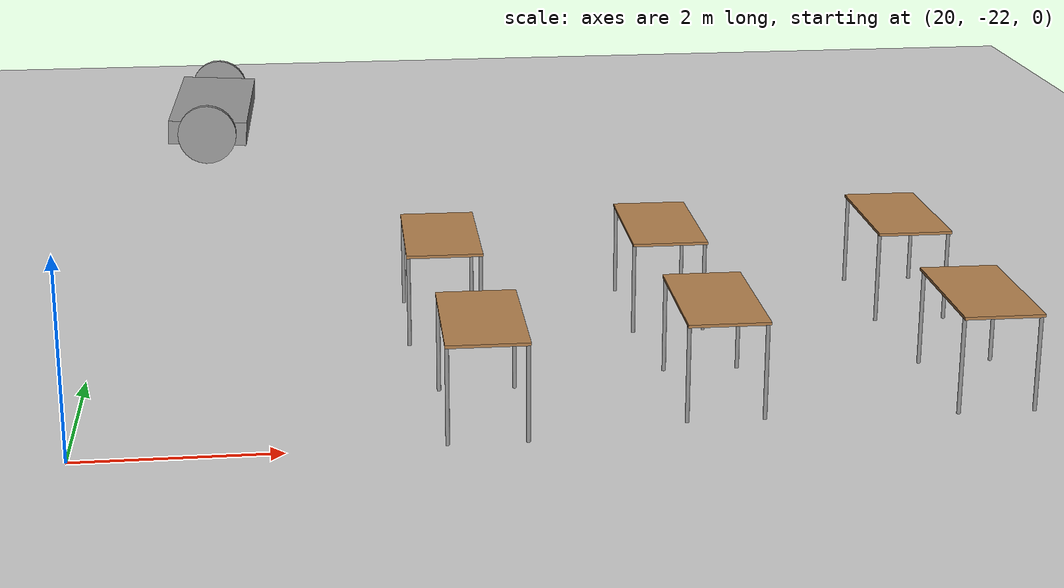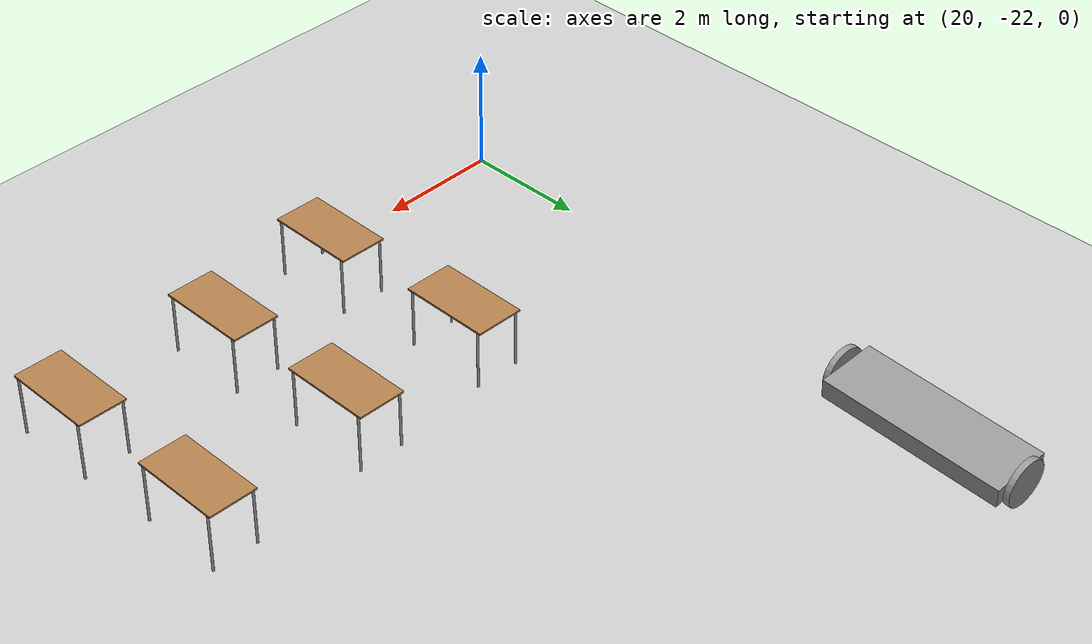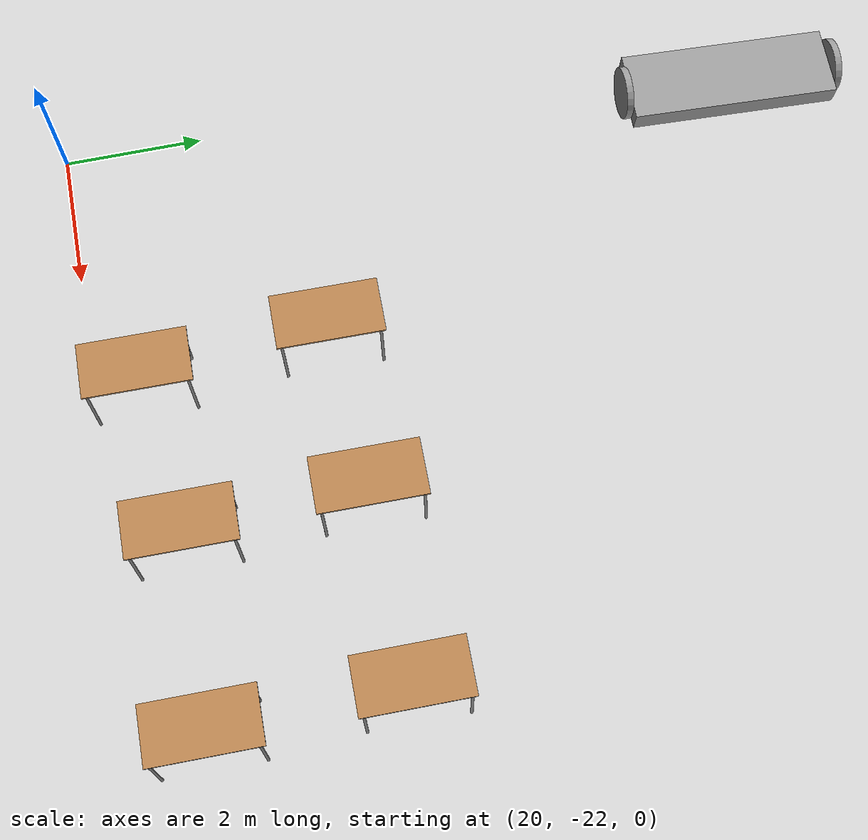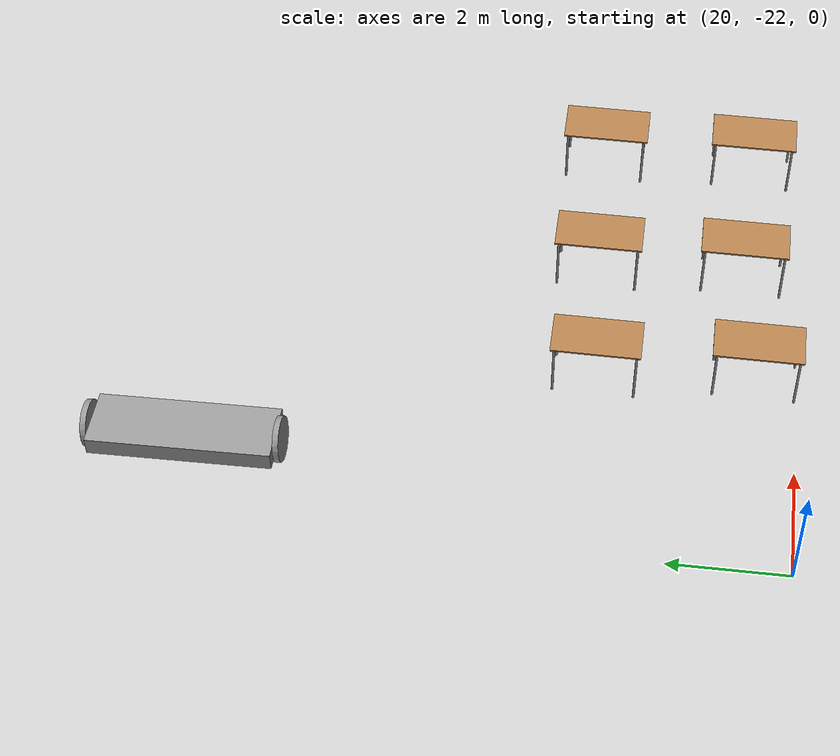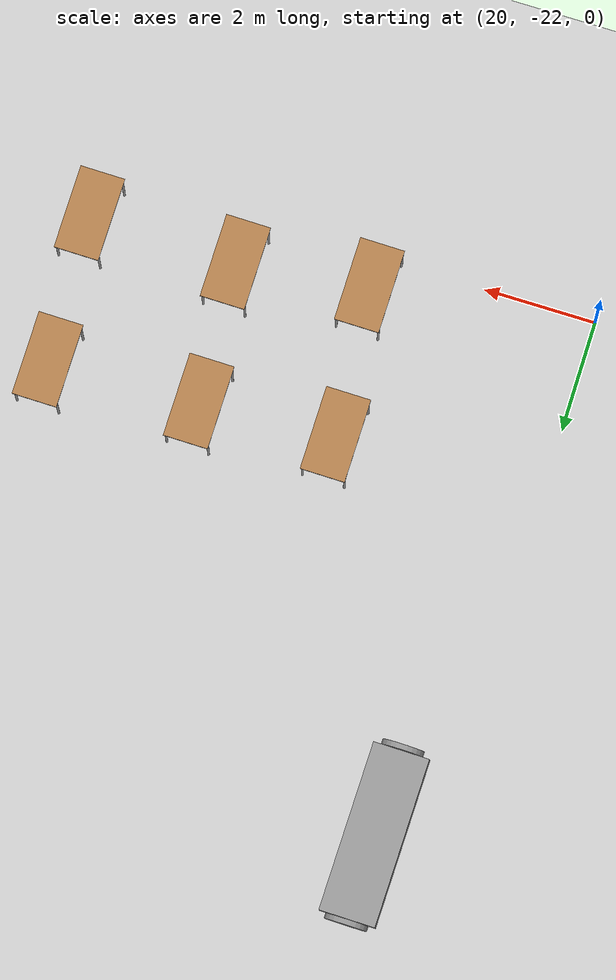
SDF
<sdf version="1.6">
 <world name="default">
  <model name="ground_plane">
   <static>1</static>
   <link name="link">
    <collision name="collision">
     <geometry><plane><normal>0 0 1</normal><size>100 100</size></plane></geometry>
     <surface>
      <contact><collide_bitmask>65535</collide_bitmask></contact>
      <friction><ode><mu>100</mu><mu2>50</mu2></ode></friction>
     </surface>
    </collision>
    <visual name="visual">
     <cast_shadows>0</cast_shadows>
     <geometry><plane><normal>0 0 1</normal><size>100 100</size></plane></geometry>
     <material>
      <script><uri>file://media/materials/scripts/gazebo.material</uri><name>Gazebo/Grey</name></script>
     </material>
    </visual>
   </link>
  </model>
  <model name="robot">
   <link name="link_0">
    <pose>3e-06 -0 0.000329 0 -0 0</pose>
    <inertial>
     <mass>1</mass>
     <inertia>
      <ixx>0.166667</ixx>
      <ixy>0</ixy>
      <ixz>0</ixz>
      <iyy>0.166667</iyy>
      <iyz>0</iyz>
      <izz>0.166667</izz>
     </inertia>
    </inertial>
    <visual name="visual">
     <geometry><box><size>3 1 0.3</size></box></geometry>
     <material>
      <lighting>1</lighting>
      <script><uri>file://media/materials/scripts/gazebo.material</uri><name>Gazebo/Grey</name></script>
      <shader type="pixel"><normal_map>__default__</normal_map></shader>
      <ambient>0.46 0.46 0.46 1</ambient>
      <diffuse>0.5 0.5 0.5 1</diffuse>
      <specular>0.46 0.46 0.46 1</specular>
      <emissive>0.46 0.46 0.46 1</emissive>
     </material>
    </visual>
    <collision name="collision">
     <geometry><box><size>3 1 0.3</size></box></geometry>
     <surface>
      <friction>
       <ode><mu>1</mu><mu2>1</mu2><fdir1>0 0 0</fdir1><slip1>0</slip1><slip2>0</slip2></ode>
       <torsional>
        <coefficient>1</coefficient>
        <patch_radius>0</patch_radius>
        <surface_radius>0</surface_radius>
        <use_patch_radius>1</use_patch_radius>
        <ode><slip>0</slip></ode>
       </torsional>
      </friction>
      <bounce><restitution_coefficient>0</restitution_coefficient><threshold>1e+06</threshold></bounce>
      <contact>
       <collide_without_contact>0</collide_without_contact>
       <collide_without_contact_bitmask>1</collide_without_contact_bitmask>
       <collide_bitmask>1</collide_bitmask>
       <ode>
        <soft_cfm>0</soft_cfm>
        <soft_erp>0.2</soft_erp>
        <kp>1e+13</kp>
        <kd>1</kd>
        <max_vel>0.01</max_vel>
        <min_depth>0</min_depth>
       </ode>
       <bullet>
        <split_impulse>1</split_impulse>
        <split_impulse_penetration_threshold>-0.01</split_impulse_penetration_threshold>
        <soft_cfm>0</soft_cfm>
        <soft_erp>0.2</soft_erp>
        <kp>1e+13</kp>
        <kd>1</kd>
       </bullet>
      </contact>
     </surface>
    </collision>
   </link>
   <link name="link_2">
    <pose>-1.55429 0 -0.000659 0 -1.54935 0</pose>
    <inertial>
     <mass>0.0533854</mass>
     <inertia>
      <ixx>0.00190297</ixx>
      <ixy>0</ixy>
      <ixz>0</ixz>
      <iyy>0.00190297</iyy>
      <iyz>0</iyz>
      <izz>0.0037245</izz>
     </inertia>
    </inertial>
    <visual name="visual">
     <geometry><cylinder><radius>0.373541</radius><length>0.0956725</length></cylinder></geometry>
     <material>
      <lighting>1</lighting>
      <script><uri>file://media/materials/scripts/gazebo.material</uri><name>Gazebo/Grey</name></script>
      <shader type="pixel"/>
      <ambient>0.3 0.3 0.3 1</ambient>
      <diffuse>0.7 0.7 0.7 1</diffuse>
      <specular>0.01 0.01 0.01 1</specular>
      <emissive>0 0 0 1</emissive>
     </material>
    </visual>
    <collision name="collision">
     <geometry><cylinder><radius>0.373541</radius><length>0.095673</length></cylinder></geometry>
     <surface>
      <friction>
       <ode><mu>1</mu><mu2>1</mu2><fdir1>0 0 0</fdir1><slip1>0</slip1><slip2>0</slip2></ode>
       <torsional>
        <coefficient>1</coefficient>
        <patch_radius>0</patch_radius>
        <surface_radius>0</surface_radius>
        <use_patch_radius>1</use_patch_radius>
        <ode><slip>0</slip></ode>
       </torsional>
      </friction>
      <bounce><restitution_coefficient>0</restitution_coefficient><threshold>1e+06</threshold></bounce>
      <contact>
       <collide_without_contact>0</collide_without_contact>
       <collide_without_contact_bitmask>1</collide_without_contact_bitmask>
       <collide_bitmask>1</collide_bitmask>
       <ode>
        <soft_cfm>0</soft_cfm>
        <soft_erp>0.2</soft_erp>
        <kp>1e+13</kp>
        <kd>1</kd>
        <max_vel>0.01</max_vel>
        <min_depth>0</min_depth>
       </ode>
       <bullet>
        <split_impulse>1</split_impulse>
        <split_impulse_penetration_threshold>-0.01</split_impulse_penetration_threshold>
        <soft_cfm>0</soft_cfm>
        <soft_erp>0.2</soft_erp>
        <kp>1e+13</kp>
        <kd>1</kd>
       </bullet>
      </contact>
     </surface>
    </collision>
   </link>
   <link name="link_2_clone">
    <pose>1.55429 -0 0.000329 0 -1.54935 0</pose>
    <inertial>
     <mass>0.055591</mass>
     <inertia>
      <ixx>0.00206137</ixx>
      <ixy>0</ixy>
      <ixz>0</ixz>
      <iyy>0.00206137</iyy>
      <iyz>0</iyz>
      <izz>0.00403793</izz>
     </inertia>
    </inertial>
    <visual name="visual">
     <geometry><cylinder><radius>0.381147</radius><length>0.0956725</length></cylinder></geometry>
     <material>
      <lighting>1</lighting>
      <script><uri>file://media/materials/scripts/gazebo.material</uri><name>Gazebo/Grey</name></script>
      <shader type="pixel"/>
      <ambient>0.3 0.3 0.3 1</ambient>
      <diffuse>0.7 0.7 0.7 1</diffuse>
      <specular>0.01 0.01 0.01 1</specular>
      <emissive>0 0 0 1</emissive>
     </material>
    </visual>
    <collision name="collision">
     <geometry><cylinder><radius>0.381147</radius><length>0.095673</length></cylinder></geometry>
     <surface>
      <friction>
       <ode><mu>1</mu><mu2>1</mu2><fdir1>0 0 0</fdir1><slip1>0</slip1><slip2>0</slip2></ode>
       <torsional>
        <coefficient>1</coefficient>
        <patch_radius>0</patch_radius>
        <surface_radius>0</surface_radius>
        <use_patch_radius>1</use_patch_radius>
        <ode><slip>0</slip></ode>
       </torsional>
      </friction>
      <bounce><restitution_coefficient>0</restitution_coefficient><threshold>1e+06</threshold></bounce>
      <contact>
       <collide_without_contact>0</collide_without_contact>
       <collide_without_contact_bitmask>1</collide_without_contact_bitmask>
       <collide_bitmask>1</collide_bitmask>
       <ode>
        <soft_cfm>0</soft_cfm>
        <soft_erp>0.2</soft_erp>
        <kp>1e+13</kp>
        <kd>1</kd>
        <max_vel>0.01</max_vel>
        <min_depth>0</min_depth>
       </ode>
       <bullet>
        <split_impulse>1</split_impulse>
        <split_impulse_penetration_threshold>-0.01</split_impulse_penetration_threshold>
        <soft_cfm>0</soft_cfm>
        <soft_erp>0.2</soft_erp>
        <kp>1e+13</kp>
        <kd>1</kd>
       </bullet>
      </contact>
     </surface>
    </collision>
   </link>
   <joint name="link_0_JOINT_0" type="revolute">
    <parent>link_0</parent>
    <child>link_2</child>
    <axis>
     <xyz>0 0 1</xyz>
     <use_parent_model_frame>0</use_parent_model_frame>
     <limit>
      <lower>-1.79769e+308</lower>
      <upper>1.79769e+308</upper>
      <effort>-1</effort>
      <velocity>-1</velocity>
     </limit>
     <dynamics>
      <spring_reference>0</spring_reference>
      <spring_stiffness>0</spring_stiffness>
      <damping>0</damping>
     </dynamics>
    </axis>
    <physics>
     <ode><limit><cfm>0</cfm><erp>0.2</erp></limit><suspension><cfm>0</cfm><erp>0.2</erp></suspension></ode>
    </physics>
   </joint>
   <joint name="link_0_JOINT_1" type="revolute">
    <parent>link_0</parent>
    <child>link_2_clone</child>
    <axis>
     <xyz>0 0 1</xyz>
     <use_parent_model_frame>0</use_parent_model_frame>
     <limit>
      <lower>-1.79769e+308</lower>
      <upper>1.79769e+308</upper>
      <effort>-1</effort>
      <velocity>-1</velocity>
     </limit>
     <dynamics>
      <spring_reference>0</spring_reference>
      <spring_stiffness>0</spring_stiffness>
      <damping>0</damping>
     </dynamics>
    </axis>
    <physics>
     <ode><limit><cfm>0</cfm><erp>0.2</erp></limit><suspension><cfm>0</cfm><erp>0.2</erp></suspension></ode>
    </physics>
   </joint>
   <static>0</static>
   <pose>21.0448 -12.255 0.871052 0.049358 0.038127 1.55252</pose>
  </model>
  <model name="table">
   <static>1</static>
   <link name="link">
    <collision name="surface">
     <pose>0 0 1 0 -0 0</pose>
     <geometry><box><size>1.5 0.8 0.03</size></box></geometry>
     <surface><friction><ode><mu>0.6</mu><mu2>0.6</mu2></ode></friction></surface>
    </collision>
    <visual name="visual1">
     <pose>0 0 1 0 -0 0</pose>
     <geometry><box><size>1.5 0.8 0.03</size></box></geometry>
     <material>
      <script><uri>file://media/materials/scripts/gazebo.material</uri><name>Gazebo/Wood</name></script>
     </material>
    </visual>
    <collision name="front_left_leg">
     <pose>0.68 0.38 0.5 0 -0 0</pose>
     <geometry><cylinder><radius>0.02</radius><length>1</length></cylinder></geometry>
    </collision>
    <visual name="front_left_leg">
     <pose>0.68 0.38 0.5 0 -0 0</pose>
     <geometry><cylinder><radius>0.02</radius><length>1</length></cylinder></geometry>
     <material>
      <script><uri>file://media/materials/scripts/gazebo.material</uri><name>Gazebo/Grey</name></script>
     </material>
    </visual>
    <collision name="front_right_leg">
     <pose>0.68 -0.38 0.5 0 -0 0</pose>
     <geometry><cylinder><radius>0.02</radius><length>1</length></cylinder></geometry>
    </collision>
    <visual name="front_right_leg">
     <pose>0.68 -0.38 0.5 0 -0 0</pose>
     <geometry><cylinder><radius>0.02</radius><length>1</length></cylinder></geometry>
     <material>
      <script><uri>file://media/materials/scripts/gazebo.material</uri><name>Gazebo/Grey</name></script>
     </material>
    </visual>
    <collision name="back_right_leg">
     <pose>-0.68 -0.38 0.5 0 -0 0</pose>
     <geometry><cylinder><radius>0.02</radius><length>1</length></cylinder></geometry>
    </collision>
    <visual name="back_right_leg">
     <pose>-0.68 -0.38 0.5 0 -0 0</pose>
     <geometry><cylinder><radius>0.02</radius><length>1</length></cylinder></geometry>
     <material>
      <script><uri>file://media/materials/scripts/gazebo.material</uri><name>Gazebo/Grey</name></script>
     </material>
    </visual>
    <collision name="back_left_leg">
     <pose>-0.68 0.38 0.5 0 -0 0</pose>
     <geometry><cylinder><radius>0.02</radius><length>1</length></cylinder></geometry>
    </collision>
    <visual name="back_left_leg">
     <pose>-0.68 0.38 0.5 0 -0 0</pose>
     <geometry><cylinder><radius>0.02</radius><length>1</length></cylinder></geometry>
     <material>
      <script><uri>file://media/materials/scripts/gazebo.material</uri><name>Gazebo/Grey</name></script>
     </material>
    </visual>
   </link>
   <pose>28.8746 -21.0889 0 0 -0 1.56039</pose>
  </model>
  <model name="table_clone">
   <static>1</static>
   <link name="link">
    <collision name="surface">
     <pose>0 0 1 0 -0 0</pose>
     <geometry><box><size>1.5 0.8 0.03</size></box></geometry>
     <surface><friction><ode><mu>0.6</mu><mu2>0.6</mu2></ode></friction></surface>
    </collision>
    <visual name="visual1">
     <pose>0 0 1 0 -0 0</pose>
     <geometry><box><size>1.5 0.8 0.03</size></box></geometry>
     <material>
      <script><uri>file://media/materials/scripts/gazebo.material</uri><name>Gazebo/Wood</name></script>
     </material>
    </visual>
    <collision name="front_left_leg">
     <pose>0.68 0.38 0.5 0 -0 0</pose>
     <geometry><cylinder><radius>0.02</radius><length>1</length></cylinder></geometry>
    </collision>
    <visual name="front_left_leg">
     <pose>0.68 0.38 0.5 0 -0 0</pose>
     <geometry><cylinder><radius>0.02</radius><length>1</length></cylinder></geometry>
     <material>
      <script><uri>file://media/materials/scripts/gazebo.material</uri><name>Gazebo/Grey</name></script>
     </material>
    </visual>
    <collision name="front_right_leg">
     <pose>0.68 -0.38 0.5 0 -0 0</pose>
     <geometry><cylinder><radius>0.02</radius><length>1</length></cylinder></geometry>
    </collision>
    <visual name="front_right_leg">
     <pose>0.68 -0.38 0.5 0 -0 0</pose>
     <geometry><cylinder><radius>0.02</radius><length>1</length></cylinder></geometry>
     <material>
      <script><uri>file://media/materials/scripts/gazebo.material</uri><name>Gazebo/Grey</name></script>
     </material>
    </visual>
    <collision name="back_right_leg">
     <pose>-0.68 -0.38 0.5 0 -0 0</pose>
     <geometry><cylinder><radius>0.02</radius><length>1</length></cylinder></geometry>
    </collision>
    <visual name="back_right_leg">
     <pose>-0.68 -0.38 0.5 0 -0 0</pose>
     <geometry><cylinder><radius>0.02</radius><length>1</length></cylinder></geometry>
     <material>
      <script><uri>file://media/materials/scripts/gazebo.material</uri><name>Gazebo/Grey</name></script>
     </material>
    </visual>
    <collision name="back_left_leg">
     <pose>-0.68 0.38 0.5 0 -0 0</pose>
     <geometry><cylinder><radius>0.02</radius><length>1</length></cylinder></geometry>
    </collision>
    <visual name="back_left_leg">
     <pose>-0.68 0.38 0.5 0 -0 0</pose>
     <geometry><cylinder><radius>0.02</radius><length>1</length></cylinder></geometry>
     <material>
      <script><uri>file://media/materials/scripts/gazebo.material</uri><name>Gazebo/Grey</name></script>
     </material>
    </visual>
   </link>
   <pose>28.7951 -18.4331 0 0 -0 1.56039</pose>
  </model>
  <model name="table_clone_0">
   <static>1</static>
   <link name="link">
    <collision name="surface">
     <pose>0 0 1 0 -0 0</pose>
     <geometry><box><size>1.5 0.8 0.03</size></box></geometry>
     <surface><friction><ode><mu>0.6</mu><mu2>0.6</mu2></ode></friction></surface>
    </collision>
    <visual name="visual1">
     <pose>0 0 1 0 -0 0</pose>
     <geometry><box><size>1.5 0.8 0.03</size></box></geometry>
     <material>
      <script><uri>file://media/materials/scripts/gazebo.material</uri><name>Gazebo/Wood</name></script>
     </material>
    </visual>
    <collision name="front_left_leg">
     <pose>0.68 0.38 0.5 0 -0 0</pose>
     <geometry><cylinder><radius>0.02</radius><length>1</length></cylinder></geometry>
    </collision>
    <visual name="front_left_leg">
     <pose>0.68 0.38 0.5 0 -0 0</pose>
     <geometry><cylinder><radius>0.02</radius><length>1</length></cylinder></geometry>
     <material>
      <script><uri>file://media/materials/scripts/gazebo.material</uri><name>Gazebo/Grey</name></script>
     </material>
    </visual>
    <collision name="front_right_leg">
     <pose>0.68 -0.38 0.5 0 -0 0</pose>
     <geometry><cylinder><radius>0.02</radius><length>1</length></cylinder></geometry>
    </collision>
    <visual name="front_right_leg">
     <pose>0.68 -0.38 0.5 0 -0 0</pose>
     <geometry><cylinder><radius>0.02</radius><length>1</length></cylinder></geometry>
     <material>
      <script><uri>file://media/materials/scripts/gazebo.material</uri><name>Gazebo/Grey</name></script>
     </material>
    </visual>
    <collision name="back_right_leg">
     <pose>-0.68 -0.38 0.5 0 -0 0</pose>
     <geometry><cylinder><radius>0.02</radius><length>1</length></cylinder></geometry>
    </collision>
    <visual name="back_right_leg">
     <pose>-0.68 -0.38 0.5 0 -0 0</pose>
     <geometry><cylinder><radius>0.02</radius><length>1</length></cylinder></geometry>
     <material>
      <script><uri>file://media/materials/scripts/gazebo.material</uri><name>Gazebo/Grey</name></script>
     </material>
    </visual>
    <collision name="back_left_leg">
     <pose>-0.68 0.38 0.5 0 -0 0</pose>
     <geometry><cylinder><radius>0.02</radius><length>1</length></cylinder></geometry>
    </collision>
    <visual name="back_left_leg">
     <pose>-0.68 0.38 0.5 0 -0 0</pose>
     <geometry><cylinder><radius>0.02</radius><length>1</length></cylinder></geometry>
     <material>
      <script><uri>file://media/materials/scripts/gazebo.material</uri><name>Gazebo/Grey</name></script>
     </material>
    </visual>
   </link>
   <pose>26.2163 -21.0073 0 0 -0 1.56039</pose>
  </model>
  <model name="table_clone_1">
   <static>1</static>
   <link name="link">
    <collision name="surface">
     <pose>0 0 1 0 -0 0</pose>
     <geometry><box><size>1.5 0.8 0.03</size></box></geometry>
     <surface><friction><ode><mu>0.6</mu><mu2>0.6</mu2></ode></friction></surface>
    </collision>
    <visual name="visual1">
     <pose>0 0 1 0 -0 0</pose>
     <geometry><box><size>1.5 0.8 0.03</size></box></geometry>
     <material>
      <script><uri>file://media/materials/scripts/gazebo.material</uri><name>Gazebo/Wood</name></script>
     </material>
    </visual>
    <collision name="front_left_leg">
     <pose>0.68 0.38 0.5 0 -0 0</pose>
     <geometry><cylinder><radius>0.02</radius><length>1</length></cylinder></geometry>
    </collision>
    <visual name="front_left_leg">
     <pose>0.68 0.38 0.5 0 -0 0</pose>
     <geometry><cylinder><radius>0.02</radius><length>1</length></cylinder></geometry>
     <material>
      <script><uri>file://media/materials/scripts/gazebo.material</uri><name>Gazebo/Grey</name></script>
     </material>
    </visual>
    <collision name="front_right_leg">
     <pose>0.68 -0.38 0.5 0 -0 0</pose>
     <geometry><cylinder><radius>0.02</radius><length>1</length></cylinder></geometry>
    </collision>
    <visual name="front_right_leg">
     <pose>0.68 -0.38 0.5 0 -0 0</pose>
     <geometry><cylinder><radius>0.02</radius><length>1</length></cylinder></geometry>
     <material>
      <script><uri>file://media/materials/scripts/gazebo.material</uri><name>Gazebo/Grey</name></script>
     </material>
    </visual>
    <collision name="back_right_leg">
     <pose>-0.68 -0.38 0.5 0 -0 0</pose>
     <geometry><cylinder><radius>0.02</radius><length>1</length></cylinder></geometry>
    </collision>
    <visual name="back_right_leg">
     <pose>-0.68 -0.38 0.5 0 -0 0</pose>
     <geometry><cylinder><radius>0.02</radius><length>1</length></cylinder></geometry>
     <material>
      <script><uri>file://media/materials/scripts/gazebo.material</uri><name>Gazebo/Grey</name></script>
     </material>
    </visual>
    <collision name="back_left_leg">
     <pose>-0.68 0.38 0.5 0 -0 0</pose>
     <geometry><cylinder><radius>0.02</radius><length>1</length></cylinder></geometry>
    </collision>
    <visual name="back_left_leg">
     <pose>-0.68 0.38 0.5 0 -0 0</pose>
     <geometry><cylinder><radius>0.02</radius><length>1</length></cylinder></geometry>
     <material>
      <script><uri>file://media/materials/scripts/gazebo.material</uri><name>Gazebo/Grey</name></script>
     </material>
    </visual>
   </link>
   <pose>26.1007 -18.4995 0 0 -0 1.56039</pose>
  </model>
  <model name="table_clone_3">
   <static>1</static>
   <link name="link">
    <collision name="surface">
     <pose>0 0 1 0 -0 0</pose>
     <geometry><box><size>1.5 0.8 0.03</size></box></geometry>
     <surface><friction><ode><mu>0.6</mu><mu2>0.6</mu2></ode></friction></surface>
    </collision>
    <visual name="visual1">
     <pose>0 0 1 0 -0 0</pose>
     <geometry><box><size>1.5 0.8 0.03</size></box></geometry>
     <material>
      <script><uri>file://media/materials/scripts/gazebo.material</uri><name>Gazebo/Wood</name></script>
     </material>
    </visual>
    <collision name="front_left_leg">
     <pose>0.68 0.38 0.5 0 -0 0</pose>
     <geometry><cylinder><radius>0.02</radius><length>1</length></cylinder></geometry>
    </collision>
    <visual name="front_left_leg">
     <pose>0.68 0.38 0.5 0 -0 0</pose>
     <geometry><cylinder><radius>0.02</radius><length>1</length></cylinder></geometry>
     <material>
      <script><uri>file://media/materials/scripts/gazebo.material</uri><name>Gazebo/Grey</name></script>
     </material>
    </visual>
    <collision name="front_right_leg">
     <pose>0.68 -0.38 0.5 0 -0 0</pose>
     <geometry><cylinder><radius>0.02</radius><length>1</length></cylinder></geometry>
    </collision>
    <visual name="front_right_leg">
     <pose>0.68 -0.38 0.5 0 -0 0</pose>
     <geometry><cylinder><radius>0.02</radius><length>1</length></cylinder></geometry>
     <material>
      <script><uri>file://media/materials/scripts/gazebo.material</uri><name>Gazebo/Grey</name></script>
     </material>
    </visual>
    <collision name="back_right_leg">
     <pose>-0.68 -0.38 0.5 0 -0 0</pose>
     <geometry><cylinder><radius>0.02</radius><length>1</length></cylinder></geometry>
    </collision>
    <visual name="back_right_leg">
     <pose>-0.68 -0.38 0.5 0 -0 0</pose>
     <geometry><cylinder><radius>0.02</radius><length>1</length></cylinder></geometry>
     <material>
      <script><uri>file://media/materials/scripts/gazebo.material</uri><name>Gazebo/Grey</name></script>
     </material>
    </visual>
    <collision name="back_left_leg">
     <pose>-0.68 0.38 0.5 0 -0 0</pose>
     <geometry><cylinder><radius>0.02</radius><length>1</length></cylinder></geometry>
    </collision>
    <visual name="back_left_leg">
     <pose>-0.68 0.38 0.5 0 -0 0</pose>
     <geometry><cylinder><radius>0.02</radius><length>1</length></cylinder></geometry>
     <material>
      <script><uri>file://media/materials/scripts/gazebo.material</uri><name>Gazebo/Grey</name></script>
     </material>
    </visual>
   </link>
   <pose>23.6885 -18.6331 0 0 -0 1.56039</pose>
  </model>
  <model name="table_clone_2">
   <static>1</static>
   <link name="link">
    <collision name="surface">
     <pose>0 0 1 0 -0 0</pose>
     <geometry><box><size>1.5 0.8 0.03</size></box></geometry>
     <surface><friction><ode><mu>0.6</mu><mu2>0.6</mu2></ode></friction></surface>
    </collision>
    <visual name="visual1">
     <pose>0 0 1 0 -0 0</pose>
     <geometry><box><size>1.5 0.8 0.03</size></box></geometry>
     <material>
      <script><uri>file://media/materials/scripts/gazebo.material</uri><name>Gazebo/Wood</name></script>
     </material>
    </visual>
    <collision name="front_left_leg">
     <pose>0.68 0.38 0.5 0 -0 0</pose>
     <geometry><cylinder><radius>0.02</radius><length>1</length></cylinder></geometry>
    </collision>
    <visual name="front_left_leg">
     <pose>0.68 0.38 0.5 0 -0 0</pose>
     <geometry><cylinder><radius>0.02</radius><length>1</length></cylinder></geometry>
     <material>
      <script><uri>file://media/materials/scripts/gazebo.material</uri><name>Gazebo/Grey</name></script>
     </material>
    </visual>
    <collision name="front_right_leg">
     <pose>0.68 -0.38 0.5 0 -0 0</pose>
     <geometry><cylinder><radius>0.02</radius><length>1</length></cylinder></geometry>
    </collision>
    <visual name="front_right_leg">
     <pose>0.68 -0.38 0.5 0 -0 0</pose>
     <geometry><cylinder><radius>0.02</radius><length>1</length></cylinder></geometry>
     <material>
      <script><uri>file://media/materials/scripts/gazebo.material</uri><name>Gazebo/Grey</name></script>
     </material>
    </visual>
    <collision name="back_right_leg">
     <pose>-0.68 -0.38 0.5 0 -0 0</pose>
     <geometry><cylinder><radius>0.02</radius><length>1</length></cylinder></geometry>
    </collision>
    <visual name="back_right_leg">
     <pose>-0.68 -0.38 0.5 0 -0 0</pose>
     <geometry><cylinder><radius>0.02</radius><length>1</length></cylinder></geometry>
     <material>
      <script><uri>file://media/materials/scripts/gazebo.material</uri><name>Gazebo/Grey</name></script>
     </material>
    </visual>
    <collision name="back_left_leg">
     <pose>-0.68 0.38 0.5 0 -0 0</pose>
     <geometry><cylinder><radius>0.02</radius><length>1</length></cylinder></geometry>
    </collision>
    <visual name="back_left_leg">
     <pose>-0.68 0.38 0.5 0 -0 0</pose>
     <geometry><cylinder><radius>0.02</radius><length>1</length></cylinder></geometry>
     <material>
      <script><uri>file://media/materials/scripts/gazebo.material</uri><name>Gazebo/Grey</name></script>
     </material>
    </visual>
   </link>
   <pose>23.8911 -21.2943 0 0 -0 1.56039</pose>
  </model>
 </world>
</sdf>
